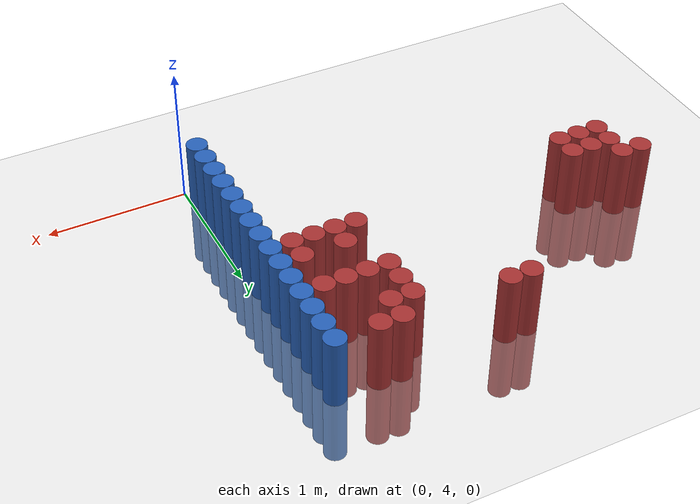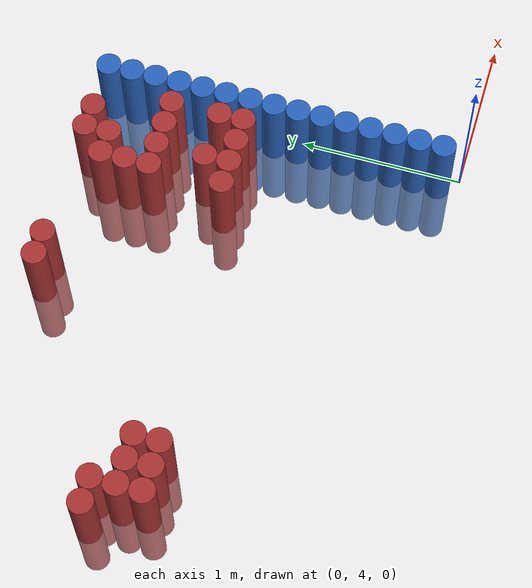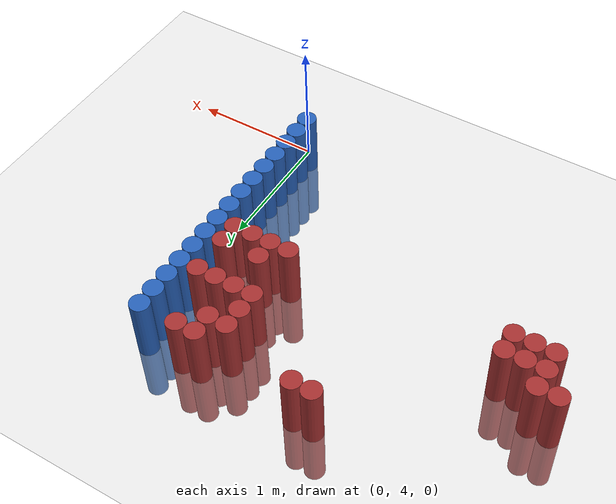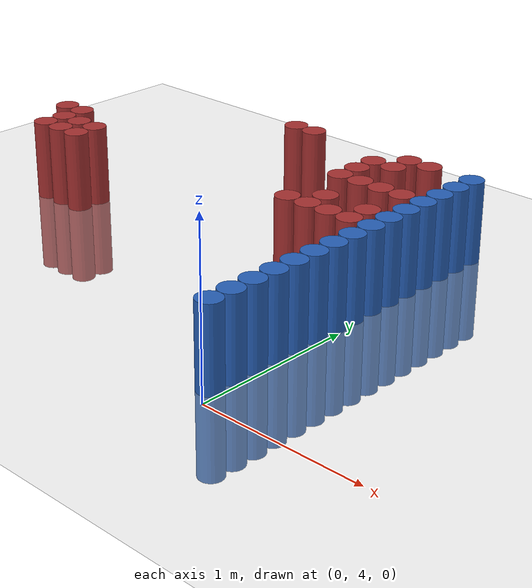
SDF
<sdf version="1.6">
 <world name="default">
  <model name="ground_plane">
   <static>1</static>
   <link name="link">
    <collision name="collision">
     <geometry><plane><normal>0 0 1</normal><size>100 100</size></plane></geometry>
     <surface><friction><ode><mu>100</mu><mu2>50</mu2></ode></friction></surface>
    </collision>
    <visual name="visual">
     <cast_shadows>0</cast_shadows>
     <geometry><plane><normal>0 0 1</normal><size>100 100</size></plane></geometry>
     <material>
      <script><uri>file://media/materials/scripts/gazebo.material</uri><name>Gazebo/Grey</name></script>
     </material>
    </visual>
   </link>
  </model>
  <model name="unit_cylinder_82">
   <static>1</static>
   <pose>-0.075000 4.125000 0.000000 0.000000 0.000000 0.000000</pose>
   <link name="link">
    <inertial>
     <mass>1</mass>
     <inertia><ixx>0.145833</ixx><ixy>0</ixy><ixz>0</ixz><iyy>0.145833</iyy><iyz>0</iyz><izz>0.125</izz></inertia>
    </inertial>
    <collision name="collision">
     <geometry><cylinder><radius>0.075000</radius><length>1</length></cylinder></geometry>
    </collision>
    <visual name="visual">
     <geometry><cylinder><radius>0.075000</radius><length>1</length></cylinder></geometry>
     <material>
      <ambient>0.152000 0.379000 0.720000 1</ambient>
      <diffuse>0.152000 0.379000 0.720000 1</diffuse>
     </material>
     <material>
      <script><name>Gazebo/Grey</name><uri>file://media/materials/scripts/gazebo.material</uri></script>
     </material>
    </visual>
    <sensor name="sensor_contact" type="contact"><contact><collision>collision</collision></contact></sensor>
   </link>
   <plugin filename="gz-sim-touchplugin-system" name="gz::sim::systems::TouchPlugin">
    <target>robot</target>
    <namespace>robot</namespace>
    <time>0.001</time>
    <enabled>true</enabled>
   </plugin>
  </model>
  <model name="unit_cylinder_84">
   <static>1</static>
   <pose>-0.075000 4.275000 0.000000 0.000000 0.000000 0.000000</pose>
   <link name="link">
    <inertial>
     <mass>1</mass>
     <inertia><ixx>0.145833</ixx><ixy>0</ixy><ixz>0</ixz><iyy>0.145833</iyy><iyz>0</iyz><izz>0.125</izz></inertia>
    </inertial>
    <collision name="collision">
     <geometry><cylinder><radius>0.075000</radius><length>1</length></cylinder></geometry>
    </collision>
    <visual name="visual">
     <geometry><cylinder><radius>0.075000</radius><length>1</length></cylinder></geometry>
     <material>
      <ambient>0.152000 0.379000 0.720000 1</ambient>
      <diffuse>0.152000 0.379000 0.720000 1</diffuse>
     </material>
     <material>
      <script><name>Gazebo/Grey</name><uri>file://media/materials/scripts/gazebo.material</uri></script>
     </material>
    </visual>
    <sensor name="sensor_contact" type="contact"><contact><collision>collision</collision></contact></sensor>
   </link>
   <plugin filename="gz-sim-touchplugin-system" name="gz::sim::systems::TouchPlugin">
    <target>robot</target>
    <namespace>robot</namespace>
    <time>0.001</time>
    <enabled>true</enabled>
   </plugin>
  </model>
  <model name="unit_cylinder_86">
   <static>1</static>
   <pose>-0.075000 4.425000 0.000000 0.000000 0.000000 0.000000</pose>
   <link name="link">
    <inertial>
     <mass>1</mass>
     <inertia><ixx>0.145833</ixx><ixy>0</ixy><ixz>0</ixz><iyy>0.145833</iyy><iyz>0</iyz><izz>0.125</izz></inertia>
    </inertial>
    <collision name="collision">
     <geometry><cylinder><radius>0.075000</radius><length>1</length></cylinder></geometry>
    </collision>
    <visual name="visual">
     <geometry><cylinder><radius>0.075000</radius><length>1</length></cylinder></geometry>
     <material>
      <ambient>0.152000 0.379000 0.720000 1</ambient>
      <diffuse>0.152000 0.379000 0.720000 1</diffuse>
     </material>
     <material>
      <script><name>Gazebo/Grey</name><uri>file://media/materials/scripts/gazebo.material</uri></script>
     </material>
    </visual>
    <sensor name="sensor_contact" type="contact"><contact><collision>collision</collision></contact></sensor>
   </link>
   <plugin filename="gz-sim-touchplugin-system" name="gz::sim::systems::TouchPlugin">
    <target>robot</target>
    <namespace>robot</namespace>
    <time>0.001</time>
    <enabled>true</enabled>
   </plugin>
  </model>
  <model name="unit_cylinder_88">
   <static>1</static>
   <pose>-0.075000 4.575000 0.000000 0.000000 0.000000 0.000000</pose>
   <link name="link">
    <inertial>
     <mass>1</mass>
     <inertia><ixx>0.145833</ixx><ixy>0</ixy><ixz>0</ixz><iyy>0.145833</iyy><iyz>0</iyz><izz>0.125</izz></inertia>
    </inertial>
    <collision name="collision">
     <geometry><cylinder><radius>0.075000</radius><length>1</length></cylinder></geometry>
    </collision>
    <visual name="visual">
     <geometry><cylinder><radius>0.075000</radius><length>1</length></cylinder></geometry>
     <material>
      <ambient>0.152000 0.379000 0.720000 1</ambient>
      <diffuse>0.152000 0.379000 0.720000 1</diffuse>
     </material>
     <material>
      <script><name>Gazebo/Grey</name><uri>file://media/materials/scripts/gazebo.material</uri></script>
     </material>
    </visual>
    <sensor name="sensor_contact" type="contact"><contact><collision>collision</collision></contact></sensor>
   </link>
   <plugin filename="gz-sim-touchplugin-system" name="gz::sim::systems::TouchPlugin">
    <target>robot</target>
    <namespace>robot</namespace>
    <time>0.001</time>
    <enabled>true</enabled>
   </plugin>
  </model>
  <model name="unit_cylinder_90">
   <static>1</static>
   <pose>-0.075000 4.725000 0.000000 0.000000 0.000000 0.000000</pose>
   <link name="link">
    <inertial>
     <mass>1</mass>
     <inertia><ixx>0.145833</ixx><ixy>0</ixy><ixz>0</ixz><iyy>0.145833</iyy><iyz>0</iyz><izz>0.125</izz></inertia>
    </inertial>
    <collision name="collision">
     <geometry><cylinder><radius>0.075000</radius><length>1</length></cylinder></geometry>
    </collision>
    <visual name="visual">
     <geometry><cylinder><radius>0.075000</radius><length>1</length></cylinder></geometry>
     <material>
      <ambient>0.152000 0.379000 0.720000 1</ambient>
      <diffuse>0.152000 0.379000 0.720000 1</diffuse>
     </material>
     <material>
      <script><name>Gazebo/Grey</name><uri>file://media/materials/scripts/gazebo.material</uri></script>
     </material>
    </visual>
    <sensor name="sensor_contact" type="contact"><contact><collision>collision</collision></contact></sensor>
   </link>
   <plugin filename="gz-sim-touchplugin-system" name="gz::sim::systems::TouchPlugin">
    <target>robot</target>
    <namespace>robot</namespace>
    <time>0.001</time>
    <enabled>true</enabled>
   </plugin>
  </model>
  <model name="unit_cylinder_92">
   <static>1</static>
   <pose>-0.075000 4.875000 0.000000 0.000000 0.000000 0.000000</pose>
   <link name="link">
    <inertial>
     <mass>1</mass>
     <inertia><ixx>0.145833</ixx><ixy>0</ixy><ixz>0</ixz><iyy>0.145833</iyy><iyz>0</iyz><izz>0.125</izz></inertia>
    </inertial>
    <collision name="collision">
     <geometry><cylinder><radius>0.075000</radius><length>1</length></cylinder></geometry>
    </collision>
    <visual name="visual">
     <geometry><cylinder><radius>0.075000</radius><length>1</length></cylinder></geometry>
     <material>
      <ambient>0.152000 0.379000 0.720000 1</ambient>
      <diffuse>0.152000 0.379000 0.720000 1</diffuse>
     </material>
     <material>
      <script><name>Gazebo/Grey</name><uri>file://media/materials/scripts/gazebo.material</uri></script>
     </material>
    </visual>
    <sensor name="sensor_contact" type="contact"><contact><collision>collision</collision></contact></sensor>
   </link>
   <plugin filename="gz-sim-touchplugin-system" name="gz::sim::systems::TouchPlugin">
    <target>robot</target>
    <namespace>robot</namespace>
    <time>0.001</time>
    <enabled>true</enabled>
   </plugin>
  </model>
  <model name="unit_cylinder_94">
   <static>1</static>
   <pose>-0.075000 5.025000 0.000000 0.000000 0.000000 0.000000</pose>
   <link name="link">
    <inertial>
     <mass>1</mass>
     <inertia><ixx>0.145833</ixx><ixy>0</ixy><ixz>0</ixz><iyy>0.145833</iyy><iyz>0</iyz><izz>0.125</izz></inertia>
    </inertial>
    <collision name="collision">
     <geometry><cylinder><radius>0.075000</radius><length>1</length></cylinder></geometry>
    </collision>
    <visual name="visual">
     <geometry><cylinder><radius>0.075000</radius><length>1</length></cylinder></geometry>
     <material>
      <ambient>0.152000 0.379000 0.720000 1</ambient>
      <diffuse>0.152000 0.379000 0.720000 1</diffuse>
     </material>
     <material>
      <script><name>Gazebo/Grey</name><uri>file://media/materials/scripts/gazebo.material</uri></script>
     </material>
    </visual>
    <sensor name="sensor_contact" type="contact"><contact><collision>collision</collision></contact></sensor>
   </link>
   <plugin filename="gz-sim-touchplugin-system" name="gz::sim::systems::TouchPlugin">
    <target>robot</target>
    <namespace>robot</namespace>
    <time>0.001</time>
    <enabled>true</enabled>
   </plugin>
  </model>
  <model name="unit_cylinder_205">
   <static>1</static>
   <pose>-2.775000 5.475000 0.000000 0.000000 0.000000 0.000000</pose>
   <link name="link">
    <inertial>
     <mass>1</mass>
     <inertia><ixx>0.145833</ixx><ixy>0</ixy><ixz>0</ixz><iyy>0.145833</iyy><iyz>0</iyz><izz>0.125</izz></inertia>
    </inertial>
    <collision name="collision">
     <geometry><cylinder><radius>0.075000</radius><length>1</length></cylinder></geometry>
    </collision>
    <visual name="visual">
     <geometry><cylinder><radius>0.075000</radius><length>1</length></cylinder></geometry>
     <material>
      <ambient>0.648000 0.192000 0.192000 1</ambient>
      <diffuse>0.648000 0.192000 0.192000 1</diffuse>
     </material>
     <material>
      <script><name>Gazebo/Grey</name><uri>file://media/materials/scripts/gazebo.material</uri></script>
     </material>
    </visual>
    <sensor name="sensor_contact" type="contact"><contact><collision>collision</collision></contact></sensor>
   </link>
   <plugin filename="gz-sim-touchplugin-system" name="gz::sim::systems::TouchPlugin">
    <target>robot</target>
    <namespace>robot</namespace>
    <time>0.001</time>
    <enabled>true</enabled>
   </plugin>
  </model>
  <model name="unit_cylinder_210">
   <static>1</static>
   <pose>-2.625000 5.175000 0.000000 0.000000 0.000000 0.000000</pose>
   <link name="link">
    <inertial>
     <mass>1</mass>
     <inertia><ixx>0.145833</ixx><ixy>0</ixy><ixz>0</ixz><iyy>0.145833</iyy><iyz>0</iyz><izz>0.125</izz></inertia>
    </inertial>
    <collision name="collision">
     <geometry><cylinder><radius>0.075000</radius><length>1</length></cylinder></geometry>
    </collision>
    <visual name="visual">
     <geometry><cylinder><radius>0.075000</radius><length>1</length></cylinder></geometry>
     <material>
      <ambient>0.648000 0.192000 0.192000 1</ambient>
      <diffuse>0.648000 0.192000 0.192000 1</diffuse>
     </material>
     <material>
      <script><name>Gazebo/Grey</name><uri>file://media/materials/scripts/gazebo.material</uri></script>
     </material>
    </visual>
    <sensor name="sensor_contact" type="contact"><contact><collision>collision</collision></contact></sensor>
   </link>
   <plugin filename="gz-sim-touchplugin-system" name="gz::sim::systems::TouchPlugin">
    <target>robot</target>
    <namespace>robot</namespace>
    <time>0.001</time>
    <enabled>true</enabled>
   </plugin>
  </model>
  <model name="unit_cylinder_211">
   <static>1</static>
   <pose>-2.625000 5.325000 0.000000 0.000000 0.000000 0.000000</pose>
   <link name="link">
    <inertial>
     <mass>1</mass>
     <inertia><ixx>0.145833</ixx><ixy>0</ixy><ixz>0</ixz><iyy>0.145833</iyy><iyz>0</iyz><izz>0.125</izz></inertia>
    </inertial>
    <collision name="collision">
     <geometry><cylinder><radius>0.075000</radius><length>1</length></cylinder></geometry>
    </collision>
    <visual name="visual">
     <geometry><cylinder><radius>0.075000</radius><length>1</length></cylinder></geometry>
     <material>
      <ambient>0.648000 0.192000 0.192000 1</ambient>
      <diffuse>0.648000 0.192000 0.192000 1</diffuse>
     </material>
     <material>
      <script><name>Gazebo/Grey</name><uri>file://media/materials/scripts/gazebo.material</uri></script>
     </material>
    </visual>
    <sensor name="sensor_contact" type="contact"><contact><collision>collision</collision></contact></sensor>
   </link>
   <plugin filename="gz-sim-touchplugin-system" name="gz::sim::systems::TouchPlugin">
    <target>robot</target>
    <namespace>robot</namespace>
    <time>0.001</time>
    <enabled>true</enabled>
   </plugin>
  </model>
  <model name="unit_cylinder_212">
   <static>1</static>
   <pose>-2.625000 5.475000 0.000000 0.000000 0.000000 0.000000</pose>
   <link name="link">
    <inertial>
     <mass>1</mass>
     <inertia><ixx>0.145833</ixx><ixy>0</ixy><ixz>0</ixz><iyy>0.145833</iyy><iyz>0</iyz><izz>0.125</izz></inertia>
    </inertial>
    <collision name="collision">
     <geometry><cylinder><radius>0.075000</radius><length>1</length></cylinder></geometry>
    </collision>
    <visual name="visual">
     <geometry><cylinder><radius>0.075000</radius><length>1</length></cylinder></geometry>
     <material>
      <ambient>0.648000 0.192000 0.192000 1</ambient>
      <diffuse>0.648000 0.192000 0.192000 1</diffuse>
     </material>
     <material>
      <script><name>Gazebo/Grey</name><uri>file://media/materials/scripts/gazebo.material</uri></script>
     </material>
    </visual>
    <sensor name="sensor_contact" type="contact"><contact><collision>collision</collision></contact></sensor>
   </link>
   <plugin filename="gz-sim-touchplugin-system" name="gz::sim::systems::TouchPlugin">
    <target>robot</target>
    <namespace>robot</namespace>
    <time>0.001</time>
    <enabled>true</enabled>
   </plugin>
  </model>
  <model name="unit_cylinder_215">
   <static>1</static>
   <pose>-2.475000 5.175000 0.000000 0.000000 0.000000 0.000000</pose>
   <link name="link">
    <inertial>
     <mass>1</mass>
     <inertia><ixx>0.145833</ixx><ixy>0</ixy><ixz>0</ixz><iyy>0.145833</iyy><iyz>0</iyz><izz>0.125</izz></inertia>
    </inertial>
    <collision name="collision">
     <geometry><cylinder><radius>0.075000</radius><length>1</length></cylinder></geometry>
    </collision>
    <visual name="visual">
     <geometry><cylinder><radius>0.075000</radius><length>1</length></cylinder></geometry>
     <material>
      <ambient>0.648000 0.192000 0.192000 1</ambient>
      <diffuse>0.648000 0.192000 0.192000 1</diffuse>
     </material>
     <material>
      <script><name>Gazebo/Grey</name><uri>file://media/materials/scripts/gazebo.material</uri></script>
     </material>
    </visual>
    <sensor name="sensor_contact" type="contact"><contact><collision>collision</collision></contact></sensor>
   </link>
   <plugin filename="gz-sim-touchplugin-system" name="gz::sim::systems::TouchPlugin">
    <target>robot</target>
    <namespace>robot</namespace>
    <time>0.001</time>
    <enabled>true</enabled>
   </plugin>
  </model>
  <model name="unit_cylinder_216">
   <static>1</static>
   <pose>-2.475000 5.325000 0.000000 0.000000 0.000000 0.000000</pose>
   <link name="link">
    <inertial>
     <mass>1</mass>
     <inertia><ixx>0.145833</ixx><ixy>0</ixy><ixz>0</ixz><iyy>0.145833</iyy><iyz>0</iyz><izz>0.125</izz></inertia>
    </inertial>
    <collision name="collision">
     <geometry><cylinder><radius>0.075000</radius><length>1</length></cylinder></geometry>
    </collision>
    <visual name="visual">
     <geometry><cylinder><radius>0.075000</radius><length>1</length></cylinder></geometry>
     <material>
      <ambient>0.648000 0.192000 0.192000 1</ambient>
      <diffuse>0.648000 0.192000 0.192000 1</diffuse>
     </material>
     <material>
      <script><name>Gazebo/Grey</name><uri>file://media/materials/scripts/gazebo.material</uri></script>
     </material>
    </visual>
    <sensor name="sensor_contact" type="contact"><contact><collision>collision</collision></contact></sensor>
   </link>
   <plugin filename="gz-sim-touchplugin-system" name="gz::sim::systems::TouchPlugin">
    <target>robot</target>
    <namespace>robot</namespace>
    <time>0.001</time>
    <enabled>true</enabled>
   </plugin>
  </model>
  <model name="unit_cylinder_220">
   <static>1</static>
   <pose>-2.325000 5.175000 0.000000 0.000000 0.000000 0.000000</pose>
   <link name="link">
    <inertial>
     <mass>1</mass>
     <inertia><ixx>0.145833</ixx><ixy>0</ixy><ixz>0</ixz><iyy>0.145833</iyy><iyz>0</iyz><izz>0.125</izz></inertia>
    </inertial>
    <collision name="collision">
     <geometry><cylinder><radius>0.075000</radius><length>1</length></cylinder></geometry>
    </collision>
    <visual name="visual">
     <geometry><cylinder><radius>0.075000</radius><length>1</length></cylinder></geometry>
     <material>
      <ambient>0.648000 0.192000 0.192000 1</ambient>
      <diffuse>0.648000 0.192000 0.192000 1</diffuse>
     </material>
     <material>
      <script><name>Gazebo/Grey</name><uri>file://media/materials/scripts/gazebo.material</uri></script>
     </material>
    </visual>
    <sensor name="sensor_contact" type="contact"><contact><collision>collision</collision></contact></sensor>
   </link>
   <plugin filename="gz-sim-touchplugin-system" name="gz::sim::systems::TouchPlugin">
    <target>robot</target>
    <namespace>robot</namespace>
    <time>0.001</time>
    <enabled>true</enabled>
   </plugin>
  </model>
  <model name="unit_cylinder_221">
   <static>1</static>
   <pose>-2.325000 5.325000 0.000000 0.000000 0.000000 0.000000</pose>
   <link name="link">
    <inertial>
     <mass>1</mass>
     <inertia><ixx>0.145833</ixx><ixy>0</ixy><ixz>0</ixz><iyy>0.145833</iyy><iyz>0</iyz><izz>0.125</izz></inertia>
    </inertial>
    <collision name="collision">
     <geometry><cylinder><radius>0.075000</radius><length>1</length></cylinder></geometry>
    </collision>
    <visual name="visual">
     <geometry><cylinder><radius>0.075000</radius><length>1</length></cylinder></geometry>
     <material>
      <ambient>0.648000 0.192000 0.192000 1</ambient>
      <diffuse>0.648000 0.192000 0.192000 1</diffuse>
     </material>
     <material>
      <script><name>Gazebo/Grey</name><uri>file://media/materials/scripts/gazebo.material</uri></script>
     </material>
    </visual>
    <sensor name="sensor_contact" type="contact"><contact><collision>collision</collision></contact></sensor>
   </link>
   <plugin filename="gz-sim-touchplugin-system" name="gz::sim::systems::TouchPlugin">
    <target>robot</target>
    <namespace>robot</namespace>
    <time>0.001</time>
    <enabled>true</enabled>
   </plugin>
  </model>
  <model name="unit_cylinder_235">
   <static>1</static>
   <pose>-1.425000 6.225000 0.000000 0.000000 0.000000 0.000000</pose>
   <link name="link">
    <inertial>
     <mass>1</mass>
     <inertia><ixx>0.145833</ixx><ixy>0</ixy><ixz>0</ixz><iyy>0.145833</iyy><iyz>0</iyz><izz>0.125</izz></inertia>
    </inertial>
    <collision name="collision">
     <geometry><cylinder><radius>0.075000</radius><length>1</length></cylinder></geometry>
    </collision>
    <visual name="visual">
     <geometry><cylinder><radius>0.075000</radius><length>1</length></cylinder></geometry>
     <material>
      <ambient>0.648000 0.192000 0.192000 1</ambient>
      <diffuse>0.648000 0.192000 0.192000 1</diffuse>
     </material>
     <material>
      <script><name>Gazebo/Grey</name><uri>file://media/materials/scripts/gazebo.material</uri></script>
     </material>
    </visual>
    <sensor name="sensor_contact" type="contact"><contact><collision>collision</collision></contact></sensor>
   </link>
   <plugin filename="gz-sim-touchplugin-system" name="gz::sim::systems::TouchPlugin">
    <target>robot</target>
    <namespace>robot</namespace>
    <time>0.001</time>
    <enabled>true</enabled>
   </plugin>
  </model>
  <model name="unit_cylinder_238">
   <static>1</static>
   <pose>-1.275000 6.225000 0.000000 0.000000 0.000000 0.000000</pose>
   <link name="link">
    <inertial>
     <mass>1</mass>
     <inertia><ixx>0.145833</ixx><ixy>0</ixy><ixz>0</ixz><iyy>0.145833</iyy><iyz>0</iyz><izz>0.125</izz></inertia>
    </inertial>
    <collision name="collision">
     <geometry><cylinder><radius>0.075000</radius><length>1</length></cylinder></geometry>
    </collision>
    <visual name="visual">
     <geometry><cylinder><radius>0.075000</radius><length>1</length></cylinder></geometry>
     <material>
      <ambient>0.648000 0.192000 0.192000 1</ambient>
      <diffuse>0.648000 0.192000 0.192000 1</diffuse>
     </material>
     <material>
      <script><name>Gazebo/Grey</name><uri>file://media/materials/scripts/gazebo.material</uri></script>
     </material>
    </visual>
    <sensor name="sensor_contact" type="contact"><contact><collision>collision</collision></contact></sensor>
   </link>
   <plugin filename="gz-sim-touchplugin-system" name="gz::sim::systems::TouchPlugin">
    <target>robot</target>
    <namespace>robot</namespace>
    <time>0.001</time>
    <enabled>true</enabled>
   </plugin>
  </model>
  <model name="unit_cylinder_248">
   <static>1</static>
   <pose>-0.675000 5.325000 0.000000 0.000000 0.000000 0.000000</pose>
   <link name="link">
    <inertial>
     <mass>1</mass>
     <inertia><ixx>0.145833</ixx><ixy>0</ixy><ixz>0</ixz><iyy>0.145833</iyy><iyz>0</iyz><izz>0.125</izz></inertia>
    </inertial>
    <collision name="collision">
     <geometry><cylinder><radius>0.075000</radius><length>1</length></cylinder></geometry>
    </collision>
    <visual name="visual">
     <geometry><cylinder><radius>0.075000</radius><length>1</length></cylinder></geometry>
     <material>
      <ambient>0.648000 0.192000 0.192000 1</ambient>
      <diffuse>0.648000 0.192000 0.192000 1</diffuse>
     </material>
     <material>
      <script><name>Gazebo/Grey</name><uri>file://media/materials/scripts/gazebo.material</uri></script>
     </material>
    </visual>
    <sensor name="sensor_contact" type="contact"><contact><collision>collision</collision></contact></sensor>
   </link>
   <plugin filename="gz-sim-touchplugin-system" name="gz::sim::systems::TouchPlugin">
    <target>robot</target>
    <namespace>robot</namespace>
    <time>0.001</time>
    <enabled>true</enabled>
   </plugin>
  </model>
  <model name="unit_cylinder_249">
   <static>1</static>
   <pose>-0.675000 5.775000 0.000000 0.000000 0.000000 0.000000</pose>
   <link name="link">
    <inertial>
     <mass>1</mass>
     <inertia><ixx>0.145833</ixx><ixy>0</ixy><ixz>0</ixz><iyy>0.145833</iyy><iyz>0</iyz><izz>0.125</izz></inertia>
    </inertial>
    <collision name="collision">
     <geometry><cylinder><radius>0.075000</radius><length>1</length></cylinder></geometry>
    </collision>
    <visual name="visual">
     <geometry><cylinder><radius>0.075000</radius><length>1</length></cylinder></geometry>
     <material>
      <ambient>0.648000 0.192000 0.192000 1</ambient>
      <diffuse>0.648000 0.192000 0.192000 1</diffuse>
     </material>
     <material>
      <script><name>Gazebo/Grey</name><uri>file://media/materials/scripts/gazebo.material</uri></script>
     </material>
    </visual>
    <sensor name="sensor_contact" type="contact"><contact><collision>collision</collision></contact></sensor>
   </link>
   <plugin filename="gz-sim-touchplugin-system" name="gz::sim::systems::TouchPlugin">
    <target>robot</target>
    <namespace>robot</namespace>
    <time>0.001</time>
    <enabled>true</enabled>
   </plugin>
  </model>
  <model name="unit_cylinder_250">
   <static>1</static>
   <pose>-0.675000 5.925000 0.000000 0.000000 0.000000 0.000000</pose>
   <link name="link">
    <inertial>
     <mass>1</mass>
     <inertia><ixx>0.145833</ixx><ixy>0</ixy><ixz>0</ixz><iyy>0.145833</iyy><iyz>0</iyz><izz>0.125</izz></inertia>
    </inertial>
    <collision name="collision">
     <geometry><cylinder><radius>0.075000</radius><length>1</length></cylinder></geometry>
    </collision>
    <visual name="visual">
     <geometry><cylinder><radius>0.075000</radius><length>1</length></cylinder></geometry>
     <material>
      <ambient>0.648000 0.192000 0.192000 1</ambient>
      <diffuse>0.648000 0.192000 0.192000 1</diffuse>
     </material>
     <material>
      <script><name>Gazebo/Grey</name><uri>file://media/materials/scripts/gazebo.material</uri></script>
     </material>
    </visual>
    <sensor name="sensor_contact" type="contact"><contact><collision>collision</collision></contact></sensor>
   </link>
   <plugin filename="gz-sim-touchplugin-system" name="gz::sim::systems::TouchPlugin">
    <target>robot</target>
    <namespace>robot</namespace>
    <time>0.001</time>
    <enabled>true</enabled>
   </plugin>
  </model>
  <model name="unit_cylinder_251">
   <static>1</static>
   <pose>-0.675000 6.075000 0.000000 0.000000 0.000000 0.000000</pose>
   <link name="link">
    <inertial>
     <mass>1</mass>
     <inertia><ixx>0.145833</ixx><ixy>0</ixy><ixz>0</ixz><iyy>0.145833</iyy><iyz>0</iyz><izz>0.125</izz></inertia>
    </inertial>
    <collision name="collision">
     <geometry><cylinder><radius>0.075000</radius><length>1</length></cylinder></geometry>
    </collision>
    <visual name="visual">
     <geometry><cylinder><radius>0.075000</radius><length>1</length></cylinder></geometry>
     <material>
      <ambient>0.648000 0.192000 0.192000 1</ambient>
      <diffuse>0.648000 0.192000 0.192000 1</diffuse>
     </material>
     <material>
      <script><name>Gazebo/Grey</name><uri>file://media/materials/scripts/gazebo.material</uri></script>
     </material>
    </visual>
    <sensor name="sensor_contact" type="contact"><contact><collision>collision</collision></contact></sensor>
   </link>
   <plugin filename="gz-sim-touchplugin-system" name="gz::sim::systems::TouchPlugin">
    <target>robot</target>
    <namespace>robot</namespace>
    <time>0.001</time>
    <enabled>true</enabled>
   </plugin>
  </model>
  <model name="unit_cylinder_254">
   <static>1</static>
   <pose>-0.525000 5.325000 0.000000 0.000000 0.000000 0.000000</pose>
   <link name="link">
    <inertial>
     <mass>1</mass>
     <inertia><ixx>0.145833</ixx><ixy>0</ixy><ixz>0</ixz><iyy>0.145833</iyy><iyz>0</iyz><izz>0.125</izz></inertia>
    </inertial>
    <collision name="collision">
     <geometry><cylinder><radius>0.075000</radius><length>1</length></cylinder></geometry>
    </collision>
    <visual name="visual">
     <geometry><cylinder><radius>0.075000</radius><length>1</length></cylinder></geometry>
     <material>
      <ambient>0.648000 0.192000 0.192000 1</ambient>
      <diffuse>0.648000 0.192000 0.192000 1</diffuse>
     </material>
     <material>
      <script><name>Gazebo/Grey</name><uri>file://media/materials/scripts/gazebo.material</uri></script>
     </material>
    </visual>
    <sensor name="sensor_contact" type="contact"><contact><collision>collision</collision></contact></sensor>
   </link>
   <plugin filename="gz-sim-touchplugin-system" name="gz::sim::systems::TouchPlugin">
    <target>robot</target>
    <namespace>robot</namespace>
    <time>0.001</time>
    <enabled>true</enabled>
   </plugin>
  </model>
  <model name="unit_cylinder_255">
   <static>1</static>
   <pose>-0.525000 5.475000 0.000000 0.000000 0.000000 0.000000</pose>
   <link name="link">
    <inertial>
     <mass>1</mass>
     <inertia><ixx>0.145833</ixx><ixy>0</ixy><ixz>0</ixz><iyy>0.145833</iyy><iyz>0</iyz><izz>0.125</izz></inertia>
    </inertial>
    <collision name="collision">
     <geometry><cylinder><radius>0.075000</radius><length>1</length></cylinder></geometry>
    </collision>
    <visual name="visual">
     <geometry><cylinder><radius>0.075000</radius><length>1</length></cylinder></geometry>
     <material>
      <ambient>0.648000 0.192000 0.192000 1</ambient>
      <diffuse>0.648000 0.192000 0.192000 1</diffuse>
     </material>
     <material>
      <script><name>Gazebo/Grey</name><uri>file://media/materials/scripts/gazebo.material</uri></script>
     </material>
    </visual>
    <sensor name="sensor_contact" type="contact"><contact><collision>collision</collision></contact></sensor>
   </link>
   <plugin filename="gz-sim-touchplugin-system" name="gz::sim::systems::TouchPlugin">
    <target>robot</target>
    <namespace>robot</namespace>
    <time>0.001</time>
    <enabled>true</enabled>
   </plugin>
  </model>
  <model name="unit_cylinder_256">
   <static>1</static>
   <pose>-0.525000 5.775000 0.000000 0.000000 0.000000 0.000000</pose>
   <link name="link">
    <inertial>
     <mass>1</mass>
     <inertia><ixx>0.145833</ixx><ixy>0</ixy><ixz>0</ixz><iyy>0.145833</iyy><iyz>0</iyz><izz>0.125</izz></inertia>
    </inertial>
    <collision name="collision">
     <geometry><cylinder><radius>0.075000</radius><length>1</length></cylinder></geometry>
    </collision>
    <visual name="visual">
     <geometry><cylinder><radius>0.075000</radius><length>1</length></cylinder></geometry>
     <material>
      <ambient>0.648000 0.192000 0.192000 1</ambient>
      <diffuse>0.648000 0.192000 0.192000 1</diffuse>
     </material>
     <material>
      <script><name>Gazebo/Grey</name><uri>file://media/materials/scripts/gazebo.material</uri></script>
     </material>
    </visual>
    <sensor name="sensor_contact" type="contact"><contact><collision>collision</collision></contact></sensor>
   </link>
   <plugin filename="gz-sim-touchplugin-system" name="gz::sim::systems::TouchPlugin">
    <target>robot</target>
    <namespace>robot</namespace>
    <time>0.001</time>
    <enabled>true</enabled>
   </plugin>
  </model>
  <model name="unit_cylinder_257">
   <static>1</static>
   <pose>-0.525000 6.075000 0.000000 0.000000 0.000000 0.000000</pose>
   <link name="link">
    <inertial>
     <mass>1</mass>
     <inertia><ixx>0.145833</ixx><ixy>0</ixy><ixz>0</ixz><iyy>0.145833</iyy><iyz>0</iyz><izz>0.125</izz></inertia>
    </inertial>
    <collision name="collision">
     <geometry><cylinder><radius>0.075000</radius><length>1</length></cylinder></geometry>
    </collision>
    <visual name="visual">
     <geometry><cylinder><radius>0.075000</radius><length>1</length></cylinder></geometry>
     <material>
      <ambient>0.648000 0.192000 0.192000 1</ambient>
      <diffuse>0.648000 0.192000 0.192000 1</diffuse>
     </material>
     <material>
      <script><name>Gazebo/Grey</name><uri>file://media/materials/scripts/gazebo.material</uri></script>
     </material>
    </visual>
    <sensor name="sensor_contact" type="contact"><contact><collision>collision</collision></contact></sensor>
   </link>
   <plugin filename="gz-sim-touchplugin-system" name="gz::sim::systems::TouchPlugin">
    <target>robot</target>
    <namespace>robot</namespace>
    <time>0.001</time>
    <enabled>true</enabled>
   </plugin>
  </model>
  <model name="unit_cylinder_258">
   <static>1</static>
   <pose>-0.525000 6.225000 0.000000 0.000000 0.000000 0.000000</pose>
   <link name="link">
    <inertial>
     <mass>1</mass>
     <inertia><ixx>0.145833</ixx><ixy>0</ixy><ixz>0</ixz><iyy>0.145833</iyy><iyz>0</iyz><izz>0.125</izz></inertia>
    </inertial>
    <collision name="collision">
     <geometry><cylinder><radius>0.075000</radius><length>1</length></cylinder></geometry>
    </collision>
    <visual name="visual">
     <geometry><cylinder><radius>0.075000</radius><length>1</length></cylinder></geometry>
     <material>
      <ambient>0.648000 0.192000 0.192000 1</ambient>
      <diffuse>0.648000 0.192000 0.192000 1</diffuse>
     </material>
     <material>
      <script><name>Gazebo/Grey</name><uri>file://media/materials/scripts/gazebo.material</uri></script>
     </material>
    </visual>
    <sensor name="sensor_contact" type="contact"><contact><collision>collision</collision></contact></sensor>
   </link>
   <plugin filename="gz-sim-touchplugin-system" name="gz::sim::systems::TouchPlugin">
    <target>robot</target>
    <namespace>robot</namespace>
    <time>0.001</time>
    <enabled>true</enabled>
   </plugin>
  </model>
  <model name="unit_cylinder_264">
   <static>1</static>
   <pose>-0.375000 5.325000 0.000000 0.000000 0.000000 0.000000</pose>
   <link name="link">
    <inertial>
     <mass>1</mass>
     <inertia><ixx>0.145833</ixx><ixy>0</ixy><ixz>0</ixz><iyy>0.145833</iyy><iyz>0</iyz><izz>0.125</izz></inertia>
    </inertial>
    <collision name="collision">
     <geometry><cylinder><radius>0.075000</radius><length>1</length></cylinder></geometry>
    </collision>
    <visual name="visual">
     <geometry><cylinder><radius>0.075000</radius><length>1</length></cylinder></geometry>
     <material>
      <ambient>0.648000 0.192000 0.192000 1</ambient>
      <diffuse>0.648000 0.192000 0.192000 1</diffuse>
     </material>
     <material>
      <script><name>Gazebo/Grey</name><uri>file://media/materials/scripts/gazebo.material</uri></script>
     </material>
    </visual>
    <sensor name="sensor_contact" type="contact"><contact><collision>collision</collision></contact></sensor>
   </link>
   <plugin filename="gz-sim-touchplugin-system" name="gz::sim::systems::TouchPlugin">
    <target>robot</target>
    <namespace>robot</namespace>
    <time>0.001</time>
    <enabled>true</enabled>
   </plugin>
  </model>
  <model name="unit_cylinder_265">
   <static>1</static>
   <pose>-0.375000 5.775000 0.000000 0.000000 0.000000 0.000000</pose>
   <link name="link">
    <inertial>
     <mass>1</mass>
     <inertia><ixx>0.145833</ixx><ixy>0</ixy><ixz>0</ixz><iyy>0.145833</iyy><iyz>0</iyz><izz>0.125</izz></inertia>
    </inertial>
    <collision name="collision">
     <geometry><cylinder><radius>0.075000</radius><length>1</length></cylinder></geometry>
    </collision>
    <visual name="visual">
     <geometry><cylinder><radius>0.075000</radius><length>1</length></cylinder></geometry>
     <material>
      <ambient>0.648000 0.192000 0.192000 1</ambient>
      <diffuse>0.648000 0.192000 0.192000 1</diffuse>
     </material>
     <material>
      <script><name>Gazebo/Grey</name><uri>file://media/materials/scripts/gazebo.material</uri></script>
     </material>
    </visual>
    <sensor name="sensor_contact" type="contact"><contact><collision>collision</collision></contact></sensor>
   </link>
   <plugin filename="gz-sim-touchplugin-system" name="gz::sim::systems::TouchPlugin">
    <target>robot</target>
    <namespace>robot</namespace>
    <time>0.001</time>
    <enabled>true</enabled>
   </plugin>
  </model>
  <model name="unit_cylinder_266">
   <static>1</static>
   <pose>-0.375000 6.225000 0.000000 0.000000 0.000000 0.000000</pose>
   <link name="link">
    <inertial>
     <mass>1</mass>
     <inertia><ixx>0.145833</ixx><ixy>0</ixy><ixz>0</ixz><iyy>0.145833</iyy><iyz>0</iyz><izz>0.125</izz></inertia>
    </inertial>
    <collision name="collision">
     <geometry><cylinder><radius>0.075000</radius><length>1</length></cylinder></geometry>
    </collision>
    <visual name="visual">
     <geometry><cylinder><radius>0.075000</radius><length>1</length></cylinder></geometry>
     <material>
      <ambient>0.648000 0.192000 0.192000 1</ambient>
      <diffuse>0.648000 0.192000 0.192000 1</diffuse>
     </material>
     <material>
      <script><name>Gazebo/Grey</name><uri>file://media/materials/scripts/gazebo.material</uri></script>
     </material>
    </visual>
    <sensor name="sensor_contact" type="contact"><contact><collision>collision</collision></contact></sensor>
   </link>
   <plugin filename="gz-sim-touchplugin-system" name="gz::sim::systems::TouchPlugin">
    <target>robot</target>
    <namespace>robot</namespace>
    <time>0.001</time>
    <enabled>true</enabled>
   </plugin>
  </model>
  <model name="unit_cylinder_279">
   <static>1</static>
   <pose>-0.225000 5.325000 0.000000 0.000000 0.000000 0.000000</pose>
   <link name="link">
    <inertial>
     <mass>1</mass>
     <inertia><ixx>0.145833</ixx><ixy>0</ixy><ixz>0</ixz><iyy>0.145833</iyy><iyz>0</iyz><izz>0.125</izz></inertia>
    </inertial>
    <collision name="collision">
     <geometry><cylinder><radius>0.075000</radius><length>1</length></cylinder></geometry>
    </collision>
    <visual name="visual">
     <geometry><cylinder><radius>0.075000</radius><length>1</length></cylinder></geometry>
     <material>
      <ambient>0.648000 0.192000 0.192000 1</ambient>
      <diffuse>0.648000 0.192000 0.192000 1</diffuse>
     </material>
     <material>
      <script><name>Gazebo/Grey</name><uri>file://media/materials/scripts/gazebo.material</uri></script>
     </material>
    </visual>
    <sensor name="sensor_contact" type="contact"><contact><collision>collision</collision></contact></sensor>
   </link>
   <plugin filename="gz-sim-touchplugin-system" name="gz::sim::systems::TouchPlugin">
    <target>robot</target>
    <namespace>robot</namespace>
    <time>0.001</time>
    <enabled>true</enabled>
   </plugin>
  </model>
  <model name="unit_cylinder_280">
   <static>1</static>
   <pose>-0.225000 5.475000 0.000000 0.000000 0.000000 0.000000</pose>
   <link name="link">
    <inertial>
     <mass>1</mass>
     <inertia><ixx>0.145833</ixx><ixy>0</ixy><ixz>0</ixz><iyy>0.145833</iyy><iyz>0</iyz><izz>0.125</izz></inertia>
    </inertial>
    <collision name="collision">
     <geometry><cylinder><radius>0.075000</radius><length>1</length></cylinder></geometry>
    </collision>
    <visual name="visual">
     <geometry><cylinder><radius>0.075000</radius><length>1</length></cylinder></geometry>
     <material>
      <ambient>0.648000 0.192000 0.192000 1</ambient>
      <diffuse>0.648000 0.192000 0.192000 1</diffuse>
     </material>
     <material>
      <script><name>Gazebo/Grey</name><uri>file://media/materials/scripts/gazebo.material</uri></script>
     </material>
    </visual>
    <sensor name="sensor_contact" type="contact"><contact><collision>collision</collision></contact></sensor>
   </link>
   <plugin filename="gz-sim-touchplugin-system" name="gz::sim::systems::TouchPlugin">
    <target>robot</target>
    <namespace>robot</namespace>
    <time>0.001</time>
    <enabled>true</enabled>
   </plugin>
  </model>
  <model name="unit_cylinder_281">
   <static>1</static>
   <pose>-0.225000 5.775000 0.000000 0.000000 0.000000 0.000000</pose>
   <link name="link">
    <inertial>
     <mass>1</mass>
     <inertia><ixx>0.145833</ixx><ixy>0</ixy><ixz>0</ixz><iyy>0.145833</iyy><iyz>0</iyz><izz>0.125</izz></inertia>
    </inertial>
    <collision name="collision">
     <geometry><cylinder><radius>0.075000</radius><length>1</length></cylinder></geometry>
    </collision>
    <visual name="visual">
     <geometry><cylinder><radius>0.075000</radius><length>1</length></cylinder></geometry>
     <material>
      <ambient>0.648000 0.192000 0.192000 1</ambient>
      <diffuse>0.648000 0.192000 0.192000 1</diffuse>
     </material>
     <material>
      <script><name>Gazebo/Grey</name><uri>file://media/materials/scripts/gazebo.material</uri></script>
     </material>
    </visual>
    <sensor name="sensor_contact" type="contact"><contact><collision>collision</collision></contact></sensor>
   </link>
   <plugin filename="gz-sim-touchplugin-system" name="gz::sim::systems::TouchPlugin">
    <target>robot</target>
    <namespace>robot</namespace>
    <time>0.001</time>
    <enabled>true</enabled>
   </plugin>
  </model>
  <model name="unit_cylinder_294">
   <static>1</static>
   <pose>-0.075000 5.175000 0.000000 0.000000 0.000000 0.000000</pose>
   <link name="link">
    <inertial>
     <mass>1</mass>
     <inertia><ixx>0.145833</ixx><ixy>0</ixy><ixz>0</ixz><iyy>0.145833</iyy><iyz>0</iyz><izz>0.125</izz></inertia>
    </inertial>
    <collision name="collision">
     <geometry><cylinder><radius>0.075000</radius><length>1</length></cylinder></geometry>
    </collision>
    <visual name="visual">
     <geometry><cylinder><radius>0.075000</radius><length>1</length></cylinder></geometry>
     <material>
      <ambient>0.152000 0.379000 0.720000 1</ambient>
      <diffuse>0.152000 0.379000 0.720000 1</diffuse>
     </material>
     <material>
      <script><name>Gazebo/Grey</name><uri>file://media/materials/scripts/gazebo.material</uri></script>
     </material>
    </visual>
    <sensor name="sensor_contact" type="contact"><contact><collision>collision</collision></contact></sensor>
   </link>
   <plugin filename="gz-sim-touchplugin-system" name="gz::sim::systems::TouchPlugin">
    <target>robot</target>
    <namespace>robot</namespace>
    <time>0.001</time>
    <enabled>true</enabled>
   </plugin>
  </model>
  <model name="unit_cylinder_295">
   <static>1</static>
   <pose>-0.075000 5.325000 0.000000 0.000000 0.000000 0.000000</pose>
   <link name="link">
    <inertial>
     <mass>1</mass>
     <inertia><ixx>0.145833</ixx><ixy>0</ixy><ixz>0</ixz><iyy>0.145833</iyy><iyz>0</iyz><izz>0.125</izz></inertia>
    </inertial>
    <collision name="collision">
     <geometry><cylinder><radius>0.075000</radius><length>1</length></cylinder></geometry>
    </collision>
    <visual name="visual">
     <geometry><cylinder><radius>0.075000</radius><length>1</length></cylinder></geometry>
     <material>
      <ambient>0.152000 0.379000 0.720000 1</ambient>
      <diffuse>0.152000 0.379000 0.720000 1</diffuse>
     </material>
     <material>
      <script><name>Gazebo/Grey</name><uri>file://media/materials/scripts/gazebo.material</uri></script>
     </material>
    </visual>
    <sensor name="sensor_contact" type="contact"><contact><collision>collision</collision></contact></sensor>
   </link>
   <plugin filename="gz-sim-touchplugin-system" name="gz::sim::systems::TouchPlugin">
    <target>robot</target>
    <namespace>robot</namespace>
    <time>0.001</time>
    <enabled>true</enabled>
   </plugin>
  </model>
  <model name="unit_cylinder_296">
   <static>1</static>
   <pose>-0.075000 5.475000 0.000000 0.000000 0.000000 0.000000</pose>
   <link name="link">
    <inertial>
     <mass>1</mass>
     <inertia><ixx>0.145833</ixx><ixy>0</ixy><ixz>0</ixz><iyy>0.145833</iyy><iyz>0</iyz><izz>0.125</izz></inertia>
    </inertial>
    <collision name="collision">
     <geometry><cylinder><radius>0.075000</radius><length>1</length></cylinder></geometry>
    </collision>
    <visual name="visual">
     <geometry><cylinder><radius>0.075000</radius><length>1</length></cylinder></geometry>
     <material>
      <ambient>0.152000 0.379000 0.720000 1</ambient>
      <diffuse>0.152000 0.379000 0.720000 1</diffuse>
     </material>
     <material>
      <script><name>Gazebo/Grey</name><uri>file://media/materials/scripts/gazebo.material</uri></script>
     </material>
    </visual>
    <sensor name="sensor_contact" type="contact"><contact><collision>collision</collision></contact></sensor>
   </link>
   <plugin filename="gz-sim-touchplugin-system" name="gz::sim::systems::TouchPlugin">
    <target>robot</target>
    <namespace>robot</namespace>
    <time>0.001</time>
    <enabled>true</enabled>
   </plugin>
  </model>
  <model name="unit_cylinder_297">
   <static>1</static>
   <pose>-0.075000 5.625000 0.000000 0.000000 0.000000 0.000000</pose>
   <link name="link">
    <inertial>
     <mass>1</mass>
     <inertia><ixx>0.145833</ixx><ixy>0</ixy><ixz>0</ixz><iyy>0.145833</iyy><iyz>0</iyz><izz>0.125</izz></inertia>
    </inertial>
    <collision name="collision">
     <geometry><cylinder><radius>0.075000</radius><length>1</length></cylinder></geometry>
    </collision>
    <visual name="visual">
     <geometry><cylinder><radius>0.075000</radius><length>1</length></cylinder></geometry>
     <material>
      <ambient>0.152000 0.379000 0.720000 1</ambient>
      <diffuse>0.152000 0.379000 0.720000 1</diffuse>
     </material>
     <material>
      <script><name>Gazebo/Grey</name><uri>file://media/materials/scripts/gazebo.material</uri></script>
     </material>
    </visual>
    <sensor name="sensor_contact" type="contact"><contact><collision>collision</collision></contact></sensor>
   </link>
   <plugin filename="gz-sim-touchplugin-system" name="gz::sim::systems::TouchPlugin">
    <target>robot</target>
    <namespace>robot</namespace>
    <time>0.001</time>
    <enabled>true</enabled>
   </plugin>
  </model>
  <model name="unit_cylinder_298">
   <static>1</static>
   <pose>-0.075000 5.775000 0.000000 0.000000 0.000000 0.000000</pose>
   <link name="link">
    <inertial>
     <mass>1</mass>
     <inertia><ixx>0.145833</ixx><ixy>0</ixy><ixz>0</ixz><iyy>0.145833</iyy><iyz>0</iyz><izz>0.125</izz></inertia>
    </inertial>
    <collision name="collision">
     <geometry><cylinder><radius>0.075000</radius><length>1</length></cylinder></geometry>
    </collision>
    <visual name="visual">
     <geometry><cylinder><radius>0.075000</radius><length>1</length></cylinder></geometry>
     <material>
      <ambient>0.152000 0.379000 0.720000 1</ambient>
      <diffuse>0.152000 0.379000 0.720000 1</diffuse>
     </material>
     <material>
      <script><name>Gazebo/Grey</name><uri>file://media/materials/scripts/gazebo.material</uri></script>
     </material>
    </visual>
    <sensor name="sensor_contact" type="contact"><contact><collision>collision</collision></contact></sensor>
   </link>
   <plugin filename="gz-sim-touchplugin-system" name="gz::sim::systems::TouchPlugin">
    <target>robot</target>
    <namespace>robot</namespace>
    <time>0.001</time>
    <enabled>true</enabled>
   </plugin>
  </model>
  <model name="unit_cylinder_299">
   <static>1</static>
   <pose>-0.075000 5.925000 0.000000 0.000000 0.000000 0.000000</pose>
   <link name="link">
    <inertial>
     <mass>1</mass>
     <inertia><ixx>0.145833</ixx><ixy>0</ixy><ixz>0</ixz><iyy>0.145833</iyy><iyz>0</iyz><izz>0.125</izz></inertia>
    </inertial>
    <collision name="collision">
     <geometry><cylinder><radius>0.075000</radius><length>1</length></cylinder></geometry>
    </collision>
    <visual name="visual">
     <geometry><cylinder><radius>0.075000</radius><length>1</length></cylinder></geometry>
     <material>
      <ambient>0.152000 0.379000 0.720000 1</ambient>
      <diffuse>0.152000 0.379000 0.720000 1</diffuse>
     </material>
     <material>
      <script><name>Gazebo/Grey</name><uri>file://media/materials/scripts/gazebo.material</uri></script>
     </material>
    </visual>
    <sensor name="sensor_contact" type="contact"><contact><collision>collision</collision></contact></sensor>
   </link>
   <plugin filename="gz-sim-touchplugin-system" name="gz::sim::systems::TouchPlugin">
    <target>robot</target>
    <namespace>robot</namespace>
    <time>0.001</time>
    <enabled>true</enabled>
   </plugin>
  </model>
  <model name="unit_cylinder_300">
   <static>1</static>
   <pose>-0.075000 6.075000 0.000000 0.000000 0.000000 0.000000</pose>
   <link name="link">
    <inertial>
     <mass>1</mass>
     <inertia><ixx>0.145833</ixx><ixy>0</ixy><ixz>0</ixz><iyy>0.145833</iyy><iyz>0</iyz><izz>0.125</izz></inertia>
    </inertial>
    <collision name="collision">
     <geometry><cylinder><radius>0.075000</radius><length>1</length></cylinder></geometry>
    </collision>
    <visual name="visual">
     <geometry><cylinder><radius>0.075000</radius><length>1</length></cylinder></geometry>
     <material>
      <ambient>0.152000 0.379000 0.720000 1</ambient>
      <diffuse>0.152000 0.379000 0.720000 1</diffuse>
     </material>
     <material>
      <script><name>Gazebo/Grey</name><uri>file://media/materials/scripts/gazebo.material</uri></script>
     </material>
    </visual>
    <sensor name="sensor_contact" type="contact"><contact><collision>collision</collision></contact></sensor>
   </link>
   <plugin filename="gz-sim-touchplugin-system" name="gz::sim::systems::TouchPlugin">
    <target>robot</target>
    <namespace>robot</namespace>
    <time>0.001</time>
    <enabled>true</enabled>
   </plugin>
  </model>
  <model name="unit_cylinder_301">
   <static>1</static>
   <pose>-0.075000 6.225000 0.000000 0.000000 0.000000 0.000000</pose>
   <link name="link">
    <inertial>
     <mass>1</mass>
     <inertia><ixx>0.145833</ixx><ixy>0</ixy><ixz>0</ixz><iyy>0.145833</iyy><iyz>0</iyz><izz>0.125</izz></inertia>
    </inertial>
    <collision name="collision">
     <geometry><cylinder><radius>0.075000</radius><length>1</length></cylinder></geometry>
    </collision>
    <visual name="visual">
     <geometry><cylinder><radius>0.075000</radius><length>1</length></cylinder></geometry>
     <material>
      <ambient>0.152000 0.379000 0.720000 1</ambient>
      <diffuse>0.152000 0.379000 0.720000 1</diffuse>
     </material>
     <material>
      <script><name>Gazebo/Grey</name><uri>file://media/materials/scripts/gazebo.material</uri></script>
     </material>
    </visual>
    <sensor name="sensor_contact" type="contact"><contact><collision>collision</collision></contact></sensor>
   </link>
   <plugin filename="gz-sim-touchplugin-system" name="gz::sim::systems::TouchPlugin">
    <target>robot</target>
    <namespace>robot</namespace>
    <time>0.001</time>
    <enabled>true</enabled>
   </plugin>
  </model>
 </world>
</sdf>
